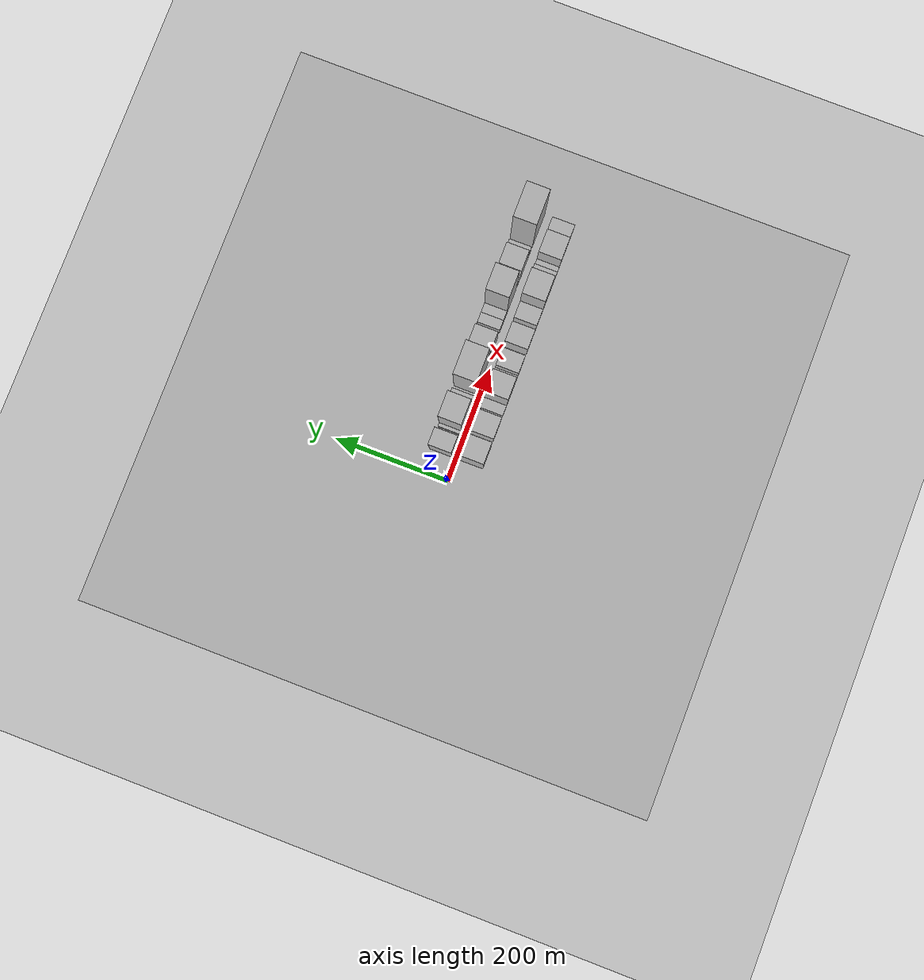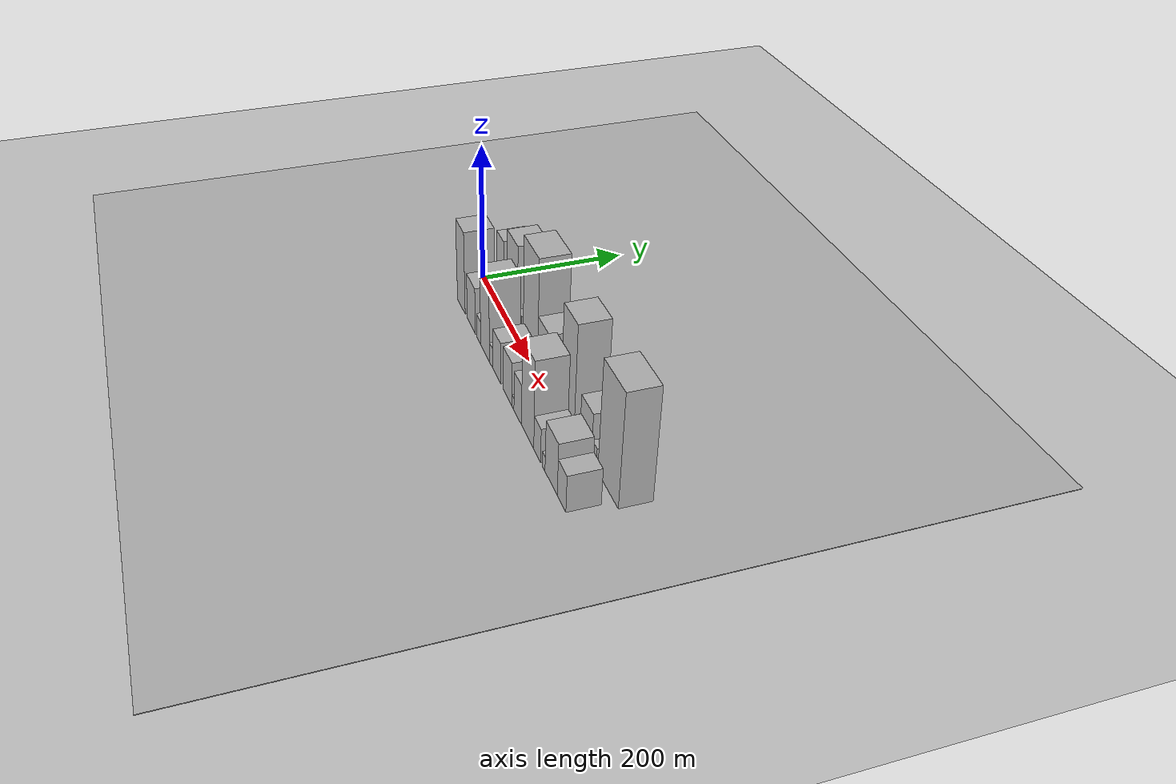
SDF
<?xml version="1.0" encoding="utf-8"?>

<sdf version="1.6">

   <world name="default">

      <gui fullscreen="0">

         <camera name="user_camera">

            <pose>-15 0 4.57585 0 0 0</pose>

            <view_controller>orbit</view_controller>

         </camera>

      </gui>

      <scene>

         <sky>

           <clouds>

             <speed>12</speed>

           </clouds>

         </sky>

         <ambient>0.4 0.4 0.4 1</ambient>

         <background>0.7 0.7 0.7 1</background>

         <shadows>1</shadows>

      </scene>

      <gravity>0 0 -9.8066</gravity>

      <magnetic_field>6e-06 2.3e-05 -4.2e-05</magnetic_field>

      <physics default="0" name="default_physics" type="ode">

         <ode>

            <solver>

               <type>quick</type>

               <iters>10</iters>

               <sor>1.0</sor>

               <use_dynamic_moi_rescaling>0</use_dynamic_moi_rescaling>

            </solver>

            <constraints>

               <cfm>0</cfm>

               <erp>0.2</erp>

               <contact_max_correcting_vel>100</contact_max_correcting_vel>

               <contact_surface_layer>0.001</contact_surface_layer>

            </constraints>

         </ode>

         <max_step_size>0.004</max_step_size>

         <real_time_factor>1</real_time_factor>

         <real_time_update_rate>250</real_time_update_rate>

      </physics>

      <light name="sun" type="directional">

         <cast_shadows>1</cast_shadows>

         <pose>0 0 10 0 0 0</pose>

         <diffuse>0.8 0.8 0.8 1</diffuse>

         <specular>0.2 0.2 0.2 1</specular>

         <attenuation>

            <range>1000</range>

            <constant>0.9</constant>

            <linear>0.01</linear>

            <quadratic>0.001</quadratic>

         </attenuation>

         <direction>-0.5 0.1 -0.9</direction>

      </light>

      <include>

         <name>ground_plane_1</name>

         <uri>model://HANNAS_ground_plane</uri>

         <pose>0 0 0  0 0 0</pose>

      </include>

      <include>

         <name>ground_plane_2</name>

         <uri>model://HANNAS_ground_plane</uri>

         <pose>100 0 0  0 0 0</pose>

      </include>

      <model name="building_1">

         <static>1</static>

         <pose frame="">55.0940 27.5000 0 0.000000 0.000000 1.570796</pose>

         <link name="link">

            <pose frame="">0 0 48.00 0 0 0</pose>

            <collision name="collision">

               <geometry>

                  <box>

                     <size>40.0000 30.1881 96.0000</size>

                  </box>

               </geometry>

               <max_contacts>10</max_contacts>

               <surface>

                  <contact>

                     <ode/>

                  </contact>

                  <bounce/>

                  <friction>

                     <torsional>

                        <ode/>

                     </torsional>

                     <ode/>

                  </friction>

               </surface>

            </collision>

            <visual name="visual">

               <cast_shadows>0</cast_shadows>

               <geometry>

                  <box>

                     <size>40.0000 30.1881 96.0000</size>

                  </box>

               </geometry>

               <material>

                  <script>

                     <uri>model://HANNAS_wall/materials/scripts</uri>

                     <uri>model://HANNAS_wall/materials/textures</uri>

                     <name>vrc/HANNAS_wall</name>

                  </script>

               </material>

            </visual>

            <self_collide>0</self_collide>

            <enable_wind>0</enable_wind>

            <kinematic>0</kinematic>

         </link>

      </model>

      <model name="building_2">

         <static>1</static>

         <pose frame="">82.3466 27.5000 0 0.000000 0.000000 1.570796</pose>

         <link name="link">

            <pose frame="">0 0 7.50 0 0 0</pose>

            <collision name="collision">

               <geometry>

                  <box>

                     <size>40.0000 6.3170 15.0000</size>

                  </box>

               </geometry>

               <max_contacts>10</max_contacts>

               <surface>

                  <contact>

                     <ode/>

                  </contact>

                  <bounce/>

                  <friction>

                     <torsional>

                        <ode/>

                     </torsional>

                     <ode/>

                  </friction>

               </surface>

            </collision>

            <visual name="visual">

               <cast_shadows>0</cast_shadows>

               <geometry>

                  <box>

                     <size>40.0000 6.3170 15.0000</size>

                  </box>

               </geometry>

               <material>

                  <script>

                     <uri>model://HANNAS_wall/materials/scripts</uri>

                     <uri>model://HANNAS_wall/materials/textures</uri>

                     <name>vrc/HANNAS_wall</name>

                  </script>

               </material>

            </visual>

            <self_collide>0</self_collide>

            <enable_wind>0</enable_wind>

            <kinematic>0</kinematic>

         </link>

      </model>

      <model name="building_3">

         <static>1</static>

         <pose frame="">107.5494 27.5000 0 0.000000 0.000000 1.570796</pose>

         <link name="link">

            <pose frame="">0 0 61.50 0 0 0</pose>

            <collision name="collision">

               <geometry>

                  <box>

                     <size>40.0000 44.0886 123.0000</size>

                  </box>

               </geometry>

               <max_contacts>10</max_contacts>

               <surface>

                  <contact>

                     <ode/>

                  </contact>

                  <bounce/>

                  <friction>

                     <torsional>

                        <ode/>

                     </torsional>

                     <ode/>

                  </friction>

               </surface>

            </collision>

            <visual name="visual">

               <cast_shadows>0</cast_shadows>

               <geometry>

                  <box>

                     <size>40.0000 44.0886 123.0000</size>

                  </box>

               </geometry>

               <material>

                  <script>

                     <uri>model://HANNAS_wall/materials/scripts</uri>

                     <uri>model://HANNAS_wall/materials/textures</uri>

                     <name>vrc/HANNAS_wall</name>

                  </script>

               </material>

            </visual>

            <self_collide>0</self_collide>

            <enable_wind>0</enable_wind>

            <kinematic>0</kinematic>

         </link>

      </model>

      <model name="building_4">

         <static>1</static>

         <pose frame="">137.9453 27.5000 0 0.000000 0.000000 1.570796</pose>

         <link name="link">

            <pose frame="">0 0 15.00 0 0 0</pose>

            <collision name="collision">

               <geometry>

                  <box>

                     <size>40.0000 16.7031 30.0000</size>

                  </box>

               </geometry>

               <max_contacts>10</max_contacts>

               <surface>

                  <contact>

                     <ode/>

                  </contact>

                  <bounce/>

                  <friction>

                     <torsional>

                        <ode/>

                     </torsional>

                     <ode/>

                  </friction>

               </surface>

            </collision>

            <visual name="visual">

               <cast_shadows>0</cast_shadows>

               <geometry>

                  <box>

                     <size>40.0000 16.7031 30.0000</size>

                  </box>

               </geometry>

               <material>

                  <script>

                     <uri>model://HANNAS_wall/materials/scripts</uri>

                     <uri>model://HANNAS_wall/materials/textures</uri>

                     <name>vrc/HANNAS_wall</name>

                  </script>

               </material>

            </visual>

            <self_collide>0</self_collide>

            <enable_wind>0</enable_wind>

            <kinematic>0</kinematic>

         </link>

      </model>

      <model name="building_5">

         <static>1</static>

         <pose frame="">182.0681 27.5000 0 0.000000 0.000000 1.570796</pose>

         <link name="link">

            <pose frame="">0 0 76.50 0 0 0</pose>

            <collision name="collision">

               <geometry>

                  <box>

                     <size>40.0000 57.5425 153.0000</size>

                  </box>

               </geometry>

               <max_contacts>10</max_contacts>

               <surface>

                  <contact>

                     <ode/>

                  </contact>

                  <bounce/>

                  <friction>

                     <torsional>

                        <ode/>

                     </torsional>

                     <ode/>

                  </friction>

               </surface>

            </collision>

            <visual name="visual">

               <cast_shadows>0</cast_shadows>

               <geometry>

                  <box>

                     <size>40.0000 57.5425 153.0000</size>

                  </box>

               </geometry>

               <material>

                  <script>

                     <uri>model://HANNAS_wall/materials/scripts</uri>

                     <uri>model://HANNAS_wall/materials/textures</uri>

                     <name>vrc/HANNAS_wall</name>

                  </script>

               </material>

            </visual>

            <self_collide>0</self_collide>

            <enable_wind>0</enable_wind>

            <kinematic>0</kinematic>

         </link>

      </model>

      <model name="building_6">

         <static>1</static>

         <pose frame="">232.1030 27.5000 0 0.000000 0.000000 1.570796</pose>

         <link name="link">

            <pose frame="">0 0 36.00 0 0 0</pose>

            <collision name="collision">

               <geometry>

                  <box>

                     <size>40.0000 42.5274 72.0000</size>

                  </box>

               </geometry>

               <max_contacts>10</max_contacts>

               <surface>

                  <contact>

                     <ode/>

                  </contact>

                  <bounce/>

                  <friction>

                     <torsional>

                        <ode/>

                     </torsional>

                     <ode/>

                  </friction>

               </surface>

            </collision>

            <visual name="visual">

               <cast_shadows>0</cast_shadows>

               <geometry>

                  <box>

                     <size>40.0000 42.5274 72.0000</size>

                  </box>

               </geometry>

               <material>

                  <script>

                     <uri>model://HANNAS_wall/materials/scripts</uri>

                     <uri>model://HANNAS_wall/materials/textures</uri>

                     <name>vrc/HANNAS_wall</name>

                  </script>

               </material>

            </visual>

            <self_collide>0</self_collide>

            <enable_wind>0</enable_wind>

            <kinematic>0</kinematic>

         </link>

      </model>

      <model name="building_7">

         <static>1</static>

         <pose frame="">272.1951 27.5000 0 0.000000 0.000000 1.570796</pose>

         <link name="link">

            <pose frame="">0 0 16.50 0 0 0</pose>

            <collision name="collision">

               <geometry>

                  <box>

                     <size>40.0000 17.6567 33.0000</size>

                  </box>

               </geometry>

               <max_contacts>10</max_contacts>

               <surface>

                  <contact>

                     <ode/>

                  </contact>

                  <bounce/>

                  <friction>

                     <torsional>

                        <ode/>

                     </torsional>

                     <ode/>

                  </friction>

               </surface>

            </collision>

            <visual name="visual">

               <cast_shadows>0</cast_shadows>

               <geometry>

                  <box>

                     <size>40.0000 17.6567 33.0000</size>

                  </box>

               </geometry>

               <material>

                  <script>

                     <uri>model://HANNAS_wall/materials/scripts</uri>

                     <uri>model://HANNAS_wall/materials/textures</uri>

                     <name>vrc/HANNAS_wall</name>

                  </script>

               </material>

            </visual>

            <self_collide>0</self_collide>

            <enable_wind>0</enable_wind>

            <kinematic>0</kinematic>

         </link>

      </model>

      <model name="building_8">

         <static>1</static>

         <pose frame="">289.3772 27.5000 0 0.000000 0.000000 1.570796</pose>

         <link name="link">

            <pose frame="">0 0 16.50 0 0 0</pose>

            <collision name="collision">

               <geometry>

                  <box>

                     <size>40.0000 16.7075 33.0000</size>

                  </box>

               </geometry>

               <max_contacts>10</max_contacts>

               <surface>

                  <contact>

                     <ode/>

                  </contact>

                  <bounce/>

                  <friction>

                     <torsional>

                        <ode/>

                     </torsional>

                     <ode/>

                  </friction>

               </surface>

            </collision>

            <visual name="visual">

               <cast_shadows>0</cast_shadows>

               <geometry>

                  <box>

                     <size>40.0000 16.7075 33.0000</size>

                  </box>

               </geometry>

               <material>

                  <script>

                     <uri>model://HANNAS_wall/materials/scripts</uri>

                     <uri>model://HANNAS_wall/materials/textures</uri>

                     <name>vrc/HANNAS_wall</name>

                  </script>

               </material>

            </visual>

            <self_collide>0</self_collide>

            <enable_wind>0</enable_wind>

            <kinematic>0</kinematic>

         </link>

      </model>

      <model name="building_9">

         <static>1</static>

         <pose frame="">320.4187 27.5000 0 0.000000 0.000000 1.570796</pose>

         <link name="link">

            <pose frame="">0 0 73.50 0 0 0</pose>

            <collision name="collision">

               <geometry>

                  <box>

                     <size>40.0000 45.3755 147.0000</size>

                  </box>

               </geometry>

               <max_contacts>10</max_contacts>

               <surface>

                  <contact>

                     <ode/>

                  </contact>

                  <bounce/>

                  <friction>

                     <torsional>

                        <ode/>

                     </torsional>

                     <ode/>

                  </friction>

               </surface>

            </collision>

            <visual name="visual">

               <cast_shadows>0</cast_shadows>

               <geometry>

                  <box>

                     <size>40.0000 45.3755 147.0000</size>

                  </box>

               </geometry>

               <material>

                  <script>

                     <uri>model://HANNAS_wall/materials/scripts</uri>

                     <uri>model://HANNAS_wall/materials/textures</uri>

                     <name>vrc/HANNAS_wall</name>

                  </script>

               </material>

            </visual>

            <self_collide>0</self_collide>

            <enable_wind>0</enable_wind>

            <kinematic>0</kinematic>

         </link>

      </model>

      <model name="building_10">

         <static>1</static>

         <pose frame="">353.5130 27.5000 0 0.000000 0.000000 1.570796</pose>

         <link name="link">

            <pose frame="">0 0 13.50 0 0 0</pose>

            <collision name="collision">

               <geometry>

                  <box>

                     <size>40.0000 10.8130 27.0000</size>

                  </box>

               </geometry>

               <max_contacts>10</max_contacts>

               <surface>

                  <contact>

                     <ode/>

                  </contact>

                  <bounce/>

                  <friction>

                     <torsional>

                        <ode/>

                     </torsional>

                     <ode/>

                  </friction>

               </surface>

            </collision>

            <visual name="visual">

               <cast_shadows>0</cast_shadows>

               <geometry>

                  <box>

                     <size>40.0000 10.8130 27.0000</size>

                  </box>

               </geometry>

               <material>

                  <script>

                     <uri>model://HANNAS_wall/materials/scripts</uri>

                     <uri>model://HANNAS_wall/materials/textures</uri>

                     <name>vrc/HANNAS_wall</name>

                  </script>

               </material>

            </visual>

            <self_collide>0</self_collide>

            <enable_wind>0</enable_wind>

            <kinematic>0</kinematic>

         </link>

      </model>

      <model name="building_11">

         <static>1</static>

         <pose frame="">380.5254 27.5000 0 0.000000 0.000000 1.570796</pose>

         <link name="link">

            <pose frame="">0 0 33.00 0 0 0</pose>

            <collision name="collision">

               <geometry>

                  <box>

                     <size>40.0000 37.2118 66.0000</size>

                  </box>

               </geometry>

               <max_contacts>10</max_contacts>

               <surface>

                  <contact>

                     <ode/>

                  </contact>

                  <bounce/>

                  <friction>

                     <torsional>

                        <ode/>

                     </torsional>

                     <ode/>

                  </friction>

               </surface>

            </collision>

            <visual name="visual">

               <cast_shadows>0</cast_shadows>

               <geometry>

                  <box>

                     <size>40.0000 37.2118 66.0000</size>

                  </box>

               </geometry>

               <material>

                  <script>

                     <uri>model://HANNAS_wall/materials/scripts</uri>

                     <uri>model://HANNAS_wall/materials/textures</uri>

                     <name>vrc/HANNAS_wall</name>

                  </script>

               </material>

            </visual>

            <self_collide>0</self_collide>

            <enable_wind>0</enable_wind>

            <kinematic>0</kinematic>

         </link>

      </model>

      <model name="building_12">

         <static>1</static>

         <pose frame="">406.7990 27.5000 0 0.000000 0.000000 1.570796</pose>

         <link name="link">

            <pose frame="">0 0 15.00 0 0 0</pose>

            <collision name="collision">

               <geometry>

                  <box>

                     <size>40.0000 15.3354 30.0000</size>

                  </box>

               </geometry>

               <max_contacts>10</max_contacts>

               <surface>

                  <contact>

                     <ode/>

                  </contact>

                  <bounce/>

                  <friction>

                     <torsional>

                        <ode/>

                     </torsional>

                     <ode/>

                  </friction>

               </surface>

            </collision>

            <visual name="visual">

               <cast_shadows>0</cast_shadows>

               <geometry>

                  <box>

                     <size>40.0000 15.3354 30.0000</size>

                  </box>

               </geometry>

               <material>

                  <script>

                     <uri>model://HANNAS_wall/materials/scripts</uri>

                     <uri>model://HANNAS_wall/materials/textures</uri>

                     <name>vrc/HANNAS_wall</name>

                  </script>

               </material>

            </visual>

            <self_collide>0</self_collide>

            <enable_wind>0</enable_wind>

            <kinematic>0</kinematic>

         </link>

      </model>

      <model name="building_13">

         <static>1</static>

         <pose frame="">450.1438 27.5000 0 0.000000 0.000000 1.570796</pose>

         <link name="link">

            <pose frame="">0 0 78.00 0 0 0</pose>

            <collision name="collision">

               <geometry>

                  <box>

                     <size>40.0000 61.3542 156.0000</size>

                  </box>

               </geometry>

               <max_contacts>10</max_contacts>

               <surface>

                  <contact>

                     <ode/>

                  </contact>

                  <bounce/>

                  <friction>

                     <torsional>

                        <ode/>

                     </torsional>

                     <ode/>

                  </friction>

               </surface>

            </collision>

            <visual name="visual">

               <cast_shadows>0</cast_shadows>

               <geometry>

                  <box>

                     <size>40.0000 61.3542 156.0000</size>

                  </box>

               </geometry>

               <material>

                  <script>

                     <uri>model://HANNAS_wall/materials/scripts</uri>

                     <uri>model://HANNAS_wall/materials/textures</uri>

                     <name>vrc/HANNAS_wall</name>

                  </script>

               </material>

            </visual>

            <self_collide>0</self_collide>

            <enable_wind>0</enable_wind>

            <kinematic>0</kinematic>

         </link>

      </model>

      <model name="building_14">

         <static>1</static>

         <pose frame="">58.7246 -27.5000 0 0.000000 0.000000 1.570796</pose>

         <link name="link">

            <pose frame="">0 0 61.50 0 0 0</pose>

            <collision name="collision">

               <geometry>

                  <box>

                     <size>40.0000 37.4491 123.0000</size>

                  </box>

               </geometry>

               <max_contacts>10</max_contacts>

               <surface>

                  <contact>

                     <ode/>

                  </contact>

                  <bounce/>

                  <friction>

                     <torsional>

                        <ode/>

                     </torsional>

                     <ode/>

                  </friction>

               </surface>

            </collision>

            <visual name="visual">

               <cast_shadows>0</cast_shadows>

               <geometry>

                  <box>

                     <size>40.0000 37.4491 123.0000</size>

                  </box>

               </geometry>

               <material>

                  <script>

                     <uri>model://HANNAS_wall/materials/scripts</uri>

                     <uri>model://HANNAS_wall/materials/textures</uri>

                     <name>vrc/HANNAS_wall</name>

                  </script>

               </material>

            </visual>

            <self_collide>0</self_collide>

            <enable_wind>0</enable_wind>

            <kinematic>0</kinematic>

         </link>

      </model>

      <model name="building_15">

         <static>1</static>

         <pose frame="">106.3455 -27.5000 0 0.000000 0.000000 1.570796</pose>

         <link name="link">

            <pose frame="">0 0 34.50 0 0 0</pose>

            <collision name="collision">

               <geometry>

                  <box>

                     <size>40.0000 37.7927 69.0000</size>

                  </box>

               </geometry>

               <max_contacts>10</max_contacts>

               <surface>

                  <contact>

                     <ode/>

                  </contact>

                  <bounce/>

                  <friction>

                     <torsional>

                        <ode/>

                     </torsional>

                     <ode/>

                  </friction>

               </surface>

            </collision>

            <visual name="visual">

               <cast_shadows>0</cast_shadows>

               <geometry>

                  <box>

                     <size>40.0000 37.7927 69.0000</size>

                  </box>

               </geometry>

               <material>

                  <script>

                     <uri>model://HANNAS_wall/materials/scripts</uri>

                     <uri>model://HANNAS_wall/materials/textures</uri>

                     <name>vrc/HANNAS_wall</name>

                  </script>

               </material>

            </visual>

            <self_collide>0</self_collide>

            <enable_wind>0</enable_wind>

            <kinematic>0</kinematic>

         </link>

      </model>

      <model name="building_16">

         <static>1</static>

         <pose frame="">140.3807 -27.5000 0 0.000000 0.000000 1.570796</pose>

         <link name="link">

            <pose frame="">0 0 18.00 0 0 0</pose>

            <collision name="collision">

               <geometry>

                  <box>

                     <size>40.0000 18.2777 36.0000</size>

                  </box>

               </geometry>

               <max_contacts>10</max_contacts>

               <surface>

                  <contact>

                     <ode/>

                  </contact>

                  <bounce/>

                  <friction>

                     <torsional>

                        <ode/>

                     </torsional>

                     <ode/>

                  </friction>

               </surface>

            </collision>

            <visual name="visual">

               <cast_shadows>0</cast_shadows>

               <geometry>

                  <box>

                     <size>40.0000 18.2777 36.0000</size>

                  </box>

               </geometry>

               <material>

                  <script>

                     <uri>model://HANNAS_wall/materials/scripts</uri>

                     <uri>model://HANNAS_wall/materials/textures</uri>

                     <name>vrc/HANNAS_wall</name>

                  </script>

               </material>

            </visual>

            <self_collide>0</self_collide>

            <enable_wind>0</enable_wind>

            <kinematic>0</kinematic>

         </link>

      </model>

      <model name="building_17">

         <static>1</static>

         <pose frame="">168.7534 -27.5000 0 0.000000 0.000000 1.570796</pose>

         <link name="link">

            <pose frame="">0 0 60.00 0 0 0</pose>

            <collision name="collision">

               <geometry>

                  <box>

                     <size>40.0000 38.4679 120.0000</size>

                  </box>

               </geometry>

               <max_contacts>10</max_contacts>

               <surface>

                  <contact>

                     <ode/>

                  </contact>

                  <bounce/>

                  <friction>

                     <torsional>

                        <ode/>

                     </torsional>

                     <ode/>

                  </friction>

               </surface>

            </collision>

            <visual name="visual">

               <cast_shadows>0</cast_shadows>

               <geometry>

                  <box>

                     <size>40.0000 38.4679 120.0000</size>

                  </box>

               </geometry>

               <material>

                  <script>

                     <uri>model://HANNAS_wall/materials/scripts</uri>

                     <uri>model://HANNAS_wall/materials/textures</uri>

                     <name>vrc/HANNAS_wall</name>

                  </script>

               </material>

            </visual>

            <self_collide>0</self_collide>

            <enable_wind>0</enable_wind>

            <kinematic>0</kinematic>

         </link>

      </model>

      <model name="building_18">

         <static>1</static>

         <pose frame="">195.5808 -27.5000 0 0.000000 0.000000 1.570796</pose>

         <link name="link">

            <pose frame="">0 0 15.00 0 0 0</pose>

            <collision name="collision">

               <geometry>

                  <box>

                     <size>40.0000 15.1869 30.0000</size>

                  </box>

               </geometry>

               <max_contacts>10</max_contacts>

               <surface>

                  <contact>

                     <ode/>

                  </contact>

                  <bounce/>

                  <friction>

                     <torsional>

                        <ode/>

                     </torsional>

                     <ode/>

                  </friction>

               </surface>

            </collision>

            <visual name="visual">

               <cast_shadows>0</cast_shadows>

               <geometry>

                  <box>

                     <size>40.0000 15.1869 30.0000</size>

                  </box>

               </geometry>

               <material>

                  <script>

                     <uri>model://HANNAS_wall/materials/scripts</uri>

                     <uri>model://HANNAS_wall/materials/textures</uri>

                     <name>vrc/HANNAS_wall</name>

                  </script>

               </material>

            </visual>

            <self_collide>0</self_collide>

            <enable_wind>0</enable_wind>

            <kinematic>0</kinematic>

         </link>

      </model>

      <model name="building_19">

         <static>1</static>

         <pose frame="">218.9603 -27.5000 0 0.000000 0.000000 1.570796</pose>

         <link name="link">

            <pose frame="">0 0 30.00 0 0 0</pose>

            <collision name="collision">

               <geometry>

                  <box>

                     <size>40.0000 31.5721 60.0000</size>

                  </box>

               </geometry>

               <max_contacts>10</max_contacts>

               <surface>

                  <contact>

                     <ode/>

                  </contact>

                  <bounce/>

                  <friction>

                     <torsional>

                        <ode/>

                     </torsional>

                     <ode/>

                  </friction>

               </surface>

            </collision>

            <visual name="visual">

               <cast_shadows>0</cast_shadows>

               <geometry>

                  <box>

                     <size>40.0000 31.5721 60.0000</size>

                  </box>

               </geometry>

               <material>

                  <script>

                     <uri>model://HANNAS_wall/materials/scripts</uri>

                     <uri>model://HANNAS_wall/materials/textures</uri>

                     <name>vrc/HANNAS_wall</name>

                  </script>

               </material>

            </visual>

            <self_collide>0</self_collide>

            <enable_wind>0</enable_wind>

            <kinematic>0</kinematic>

         </link>

      </model>

      <model name="building_20">

         <static>1</static>

         <pose frame="">262.4641 -27.5000 0 0.000000 0.000000 1.570796</pose>

         <link name="link">

            <pose frame="">0 0 31.50 0 0 0</pose>

            <collision name="collision">

               <geometry>

                  <box>

                     <size>40.0000 35.4355 63.0000</size>

                  </box>

               </geometry>

               <max_contacts>10</max_contacts>

               <surface>

                  <contact>

                     <ode/>

                  </contact>

                  <bounce/>

                  <friction>

                     <torsional>

                        <ode/>

                     </torsional>

                     <ode/>

                  </friction>

               </surface>

            </collision>

            <visual name="visual">

               <cast_shadows>0</cast_shadows>

               <geometry>

                  <box>

                     <size>40.0000 35.4355 63.0000</size>

                  </box>

               </geometry>

               <material>

                  <script>

                     <uri>model://HANNAS_wall/materials/scripts</uri>

                     <uri>model://HANNAS_wall/materials/textures</uri>

                     <name>vrc/HANNAS_wall</name>

                  </script>

               </material>

            </visual>

            <self_collide>0</self_collide>

            <enable_wind>0</enable_wind>

            <kinematic>0</kinematic>

         </link>

      </model>

      <model name="building_21">

         <static>1</static>

         <pose frame="">283.9821 -27.5000 0 0.000000 0.000000 1.570796</pose>

         <link name="link">

            <pose frame="">0 0 9.00 0 0 0</pose>

            <collision name="collision">

               <geometry>

                  <box>

                     <size>40.0000 7.6004 18.0000</size>

                  </box>

               </geometry>

               <max_contacts>10</max_contacts>

               <surface>

                  <contact>

                     <ode/>

                  </contact>

                  <bounce/>

                  <friction>

                     <torsional>

                        <ode/>

                     </torsional>

                     <ode/>

                  </friction>

               </surface>

            </collision>

            <visual name="visual">

               <cast_shadows>0</cast_shadows>

               <geometry>

                  <box>

                     <size>40.0000 7.6004 18.0000</size>

                  </box>

               </geometry>

               <material>

                  <script>

                     <uri>model://HANNAS_wall/materials/scripts</uri>

                     <uri>model://HANNAS_wall/materials/textures</uri>

                     <name>vrc/HANNAS_wall</name>

                  </script>

               </material>

            </visual>

            <self_collide>0</self_collide>

            <enable_wind>0</enable_wind>

            <kinematic>0</kinematic>

         </link>

      </model>

      <model name="building_22">

         <static>1</static>

         <pose frame="">302.3614 -27.5000 0 0.000000 0.000000 1.570796</pose>

         <link name="link">

            <pose frame="">0 0 28.50 0 0 0</pose>

            <collision name="collision">

               <geometry>

                  <box>

                     <size>40.0000 29.1583 57.0000</size>

                  </box>

               </geometry>

               <max_contacts>10</max_contacts>

               <surface>

                  <contact>

                     <ode/>

                  </contact>

                  <bounce/>

                  <friction>

                     <torsional>

                        <ode/>

                     </torsional>

                     <ode/>

                  </friction>

               </surface>

            </collision>

            <visual name="visual">

               <cast_shadows>0</cast_shadows>

               <geometry>

                  <box>

                     <size>40.0000 29.1583 57.0000</size>

                  </box>

               </geometry>

               <material>

                  <script>

                     <uri>model://HANNAS_wall/materials/scripts</uri>

                     <uri>model://HANNAS_wall/materials/textures</uri>

                     <name>vrc/HANNAS_wall</name>

                  </script>

               </material>

            </visual>

            <self_collide>0</self_collide>

            <enable_wind>0</enable_wind>

            <kinematic>0</kinematic>

         </link>

      </model>

      <model name="building_23">

         <static>1</static>

         <pose frame="">339.2685 -27.5000 0 0.000000 0.000000 1.570796</pose>

         <link name="link">

            <pose frame="">0 0 61.50 0 0 0</pose>

            <collision name="collision">

               <geometry>

                  <box>

                     <size>40.0000 44.6558 123.0000</size>

                  </box>

               </geometry>

               <max_contacts>10</max_contacts>

               <surface>

                  <contact>

                     <ode/>

                  </contact>

                  <bounce/>

                  <friction>

                     <torsional>

                        <ode/>

                     </torsional>

                     <ode/>

                  </friction>

               </surface>

            </collision>

            <visual name="visual">

               <cast_shadows>0</cast_shadows>

               <geometry>

                  <box>

                     <size>40.0000 44.6558 123.0000</size>

                  </box>

               </geometry>

               <material>

                  <script>

                     <uri>model://HANNAS_wall/materials/scripts</uri>

                     <uri>model://HANNAS_wall/materials/textures</uri>

                     <name>vrc/HANNAS_wall</name>

                  </script>

               </material>

            </visual>

            <self_collide>0</self_collide>

            <enable_wind>0</enable_wind>

            <kinematic>0</kinematic>

         </link>

      </model>

      <model name="building_24">

         <static>1</static>

         <pose frame="">373.6818 -27.5000 0 0.000000 0.000000 1.570796</pose>

         <link name="link">

            <pose frame="">0 0 24.00 0 0 0</pose>

            <collision name="collision">

               <geometry>

                  <box>

                     <size>40.0000 24.1710 48.0000</size>

                  </box>

               </geometry>

               <max_contacts>10</max_contacts>

               <surface>

                  <contact>

                     <ode/>

                  </contact>

                  <bounce/>

                  <friction>

                     <torsional>

                        <ode/>

                     </torsional>

                     <ode/>

                  </friction>

               </surface>

            </collision>

            <visual name="visual">

               <cast_shadows>0</cast_shadows>

               <geometry>

                  <box>

                     <size>40.0000 24.1710 48.0000</size>

                  </box>

               </geometry>

               <material>

                  <script>

                     <uri>model://HANNAS_wall/materials/scripts</uri>

                     <uri>model://HANNAS_wall/materials/textures</uri>

                     <name>vrc/HANNAS_wall</name>

                  </script>

               </material>

            </visual>

            <self_collide>0</self_collide>

            <enable_wind>0</enable_wind>

            <kinematic>0</kinematic>

         </link>

      </model>

      <model name="building_25">

         <static>1</static>

         <pose frame="">395.8757 -27.5000 0 0.000000 0.000000 1.570796</pose>

         <link name="link">

            <pose frame="">0 0 10.50 0 0 0</pose>

            <collision name="collision">

               <geometry>

                  <box>

                     <size>40.0000 10.2167 21.0000</size>

                  </box>

               </geometry>

               <max_contacts>10</max_contacts>

               <surface>

                  <contact>

                     <ode/>

                  </contact>

                  <bounce/>

                  <friction>

                     <torsional>

                        <ode/>

                     </torsional>

                     <ode/>

                  </friction>

               </surface>

            </collision>

            <visual name="visual">

               <cast_shadows>0</cast_shadows>

               <geometry>

                  <box>

                     <size>40.0000 10.2167 21.0000</size>

                  </box>

               </geometry>

               <material>

                  <script>

                     <uri>model://HANNAS_wall/materials/scripts</uri>

                     <uri>model://HANNAS_wall/materials/textures</uri>

                     <name>vrc/HANNAS_wall</name>

                  </script>

               </material>

            </visual>

            <self_collide>0</self_collide>

            <enable_wind>0</enable_wind>

            <kinematic>0</kinematic>

         </link>

      </model>

      <model name="building_26">

         <static>1</static>

         <pose frame="">421.3488 -27.5000 0 0.000000 0.000000 1.570796</pose>

         <link name="link">

            <pose frame="">0 0 36.00 0 0 0</pose>

            <collision name="collision">

               <geometry>

                  <box>

                     <size>40.0000 40.7296 72.0000</size>

                  </box>

               </geometry>

               <max_contacts>10</max_contacts>

               <surface>

                  <contact>

                     <ode/>

                  </contact>

                  <bounce/>

                  <friction>

                     <torsional>

                        <ode/>

                     </torsional>

                     <ode/>

                  </friction>

               </surface>

            </collision>

            <visual name="visual">

               <cast_shadows>0</cast_shadows>

               <geometry>

                  <box>

                     <size>40.0000 40.7296 72.0000</size>

                  </box>

               </geometry>

               <material>

                  <script>

                     <uri>model://HANNAS_wall/materials/scripts</uri>

                     <uri>model://HANNAS_wall/materials/textures</uri>

                     <name>vrc/HANNAS_wall</name>

                  </script>

               </material>

            </visual>

            <self_collide>0</self_collide>

            <enable_wind>0</enable_wind>

            <kinematic>0</kinematic>

         </link>

      </model>

      <model name="building_27">

         <static>1</static>

         <pose frame="">455.5549 -27.5000 0 0.000000 0.000000 1.570796</pose>

         <link name="link">

            <pose frame="">0 0 25.50 0 0 0</pose>

            <collision name="collision">

               <geometry>

                  <box>

                     <size>40.0000 27.6827 51.0000</size>

                  </box>

               </geometry>

               <max_contacts>10</max_contacts>

               <surface>

                  <contact>

                     <ode/>

                  </contact>

                  <bounce/>

                  <friction>

                     <torsional>

                        <ode/>

                     </torsional>

                     <ode/>

                  </friction>

               </surface>

            </collision>

            <visual name="visual">

               <cast_shadows>0</cast_shadows>

               <geometry>

                  <box>

                     <size>40.0000 27.6827 51.0000</size>

                  </box>

               </geometry>

               <material>

                  <script>

                     <uri>model://HANNAS_wall/materials/scripts</uri>

                     <uri>model://HANNAS_wall/materials/textures</uri>

                     <name>vrc/HANNAS_wall</name>

                  </script>

               </material>

            </visual>

            <self_collide>0</self_collide>

            <enable_wind>0</enable_wind>

            <kinematic>0</kinematic>

         </link>

      </model>

   </world>

</sdf>

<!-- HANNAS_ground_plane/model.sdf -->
<sdf version="1.4">
<model name="HANNAS_ground_plane">
  <static>true</static>
    <link name="link">
      <collision name="collision">
        <geometry>
          <plane>
            <normal>0 0 1</normal>
            <size>1000 1000</size>
          </plane>
        </geometry>
        <surface>
          <friction>
            <ode>
              <mu>100</mu>
              <mu2>50</mu2>
            </ode>
          </friction>
        </surface>
      </collision>
      <visual name="visual">
        <cast_shadows>false</cast_shadows>
        <geometry>
          <plane>
            <normal>0 0 1</normal>
            <size>1000 1000</size>
          </plane>
        </geometry>
        <material>
          <script>
            <uri>model://HANNAS_ground_plane/materials/scripts/HANNAS_ground_plane.material</uri>
	    <uri>model://HANNAS_ground_plane/materials/textures</uri>
            <name>HANNASGroundPlane/Image</name>
          </script>
        </material>
      </visual>
    </link>
  </model>
</sdf>
